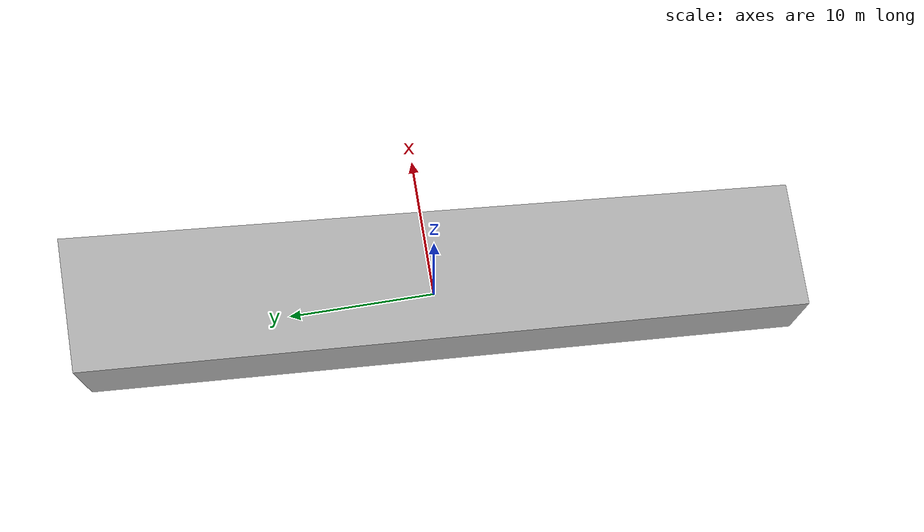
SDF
<?xml version="1.0" ?>
<sdf version="1.7">
  <model name="building_1574_actual_a_casa">
    <static>true</static>
    <link name="building_link">
      <visual name="building_visual">
        <geometry>
          <mesh>
            <uri>model://building_1574_actual_a_casa/meshes/construction_1574_actual_A_Casa_h5m.obj</uri>
          </mesh>
        </geometry>
      </visual>
    <collision name="building_collision">
      <geometry>
        <mesh>
          <uri>model://building_1574_actual_a_casa/meshes/construction_1574_actual_A_Casa_h5m.obj</uri>
        </mesh>
      </geometry>
    </collision>
    </link>
  </model>
</sdf>
